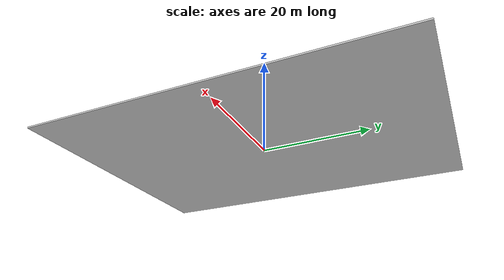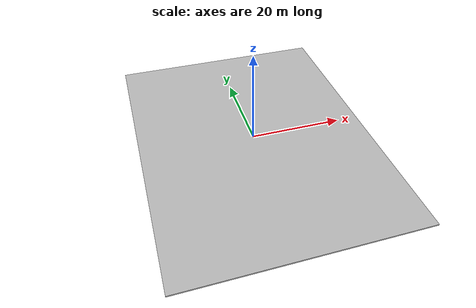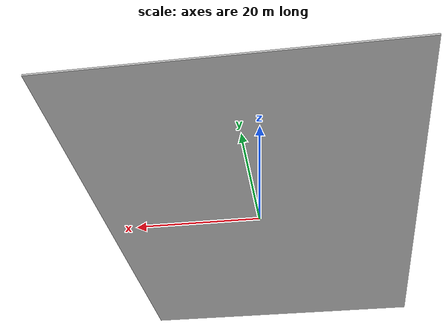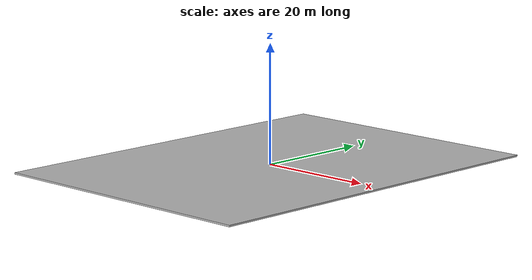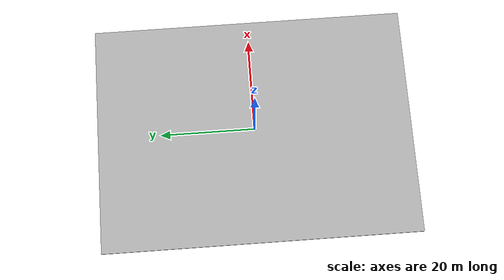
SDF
<?xml version="1.0"?>
<sdf version="1.6">
  <model name="warehouse_floor">
    <static>true</static>
    <link name="link">
      <visual name="floor_visual">
        <geometry>
          <box>
            <size>49.1835 66.81 0.292609</size>
          </box>
        </geometry>
        <material>
          <script>
            <uri>model://warehouse_floor/materials/scripts</uri>
            <uri>model://warehouse_floor/materials/textures</uri>
            <name>Warehouse/Floor</name>
          </script>
          <shader type="pixel"/>
        </material>
      </visual>
      <collision name="collision">
        <geometry>
          <box>
            <size>49.1835 66.81 0.292609</size>
          </box>
        </geometry>
      </collision>
    </link>
  </model>
</sdf>
